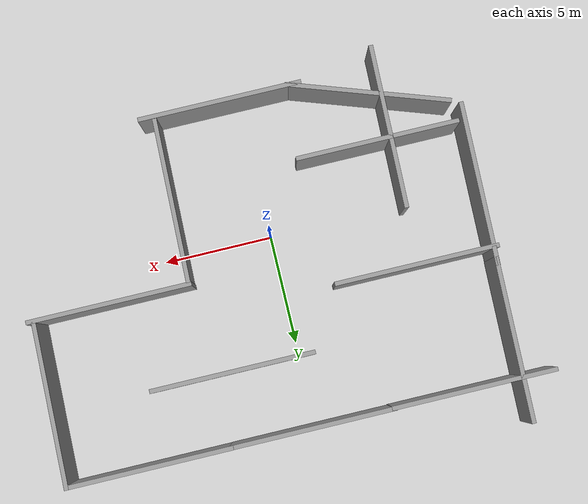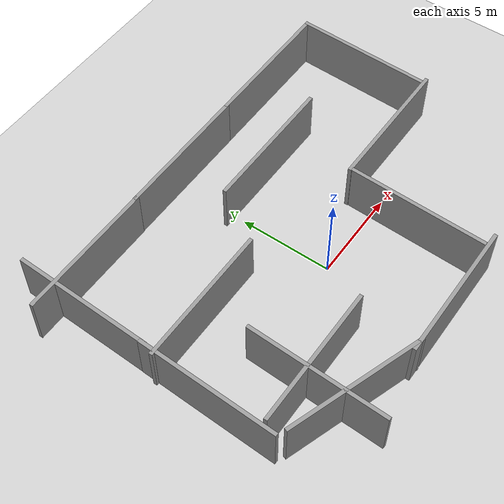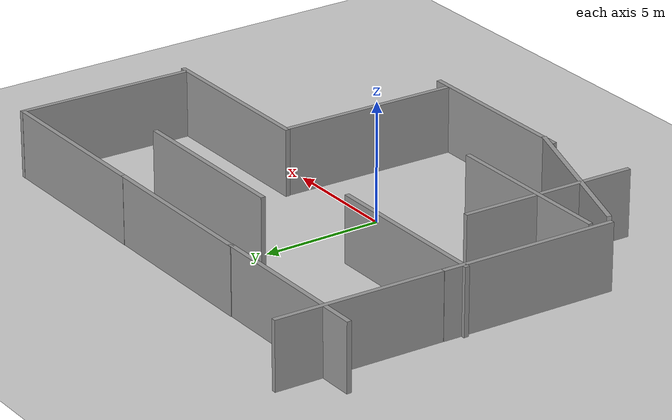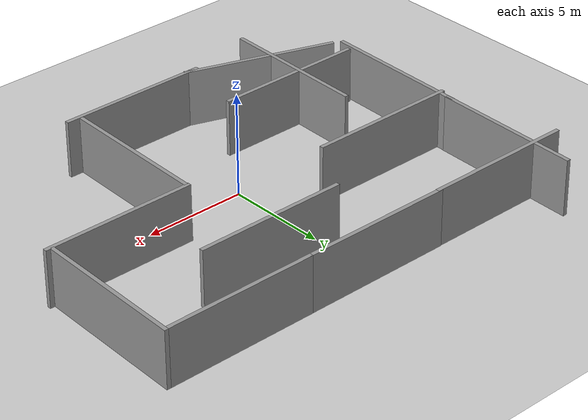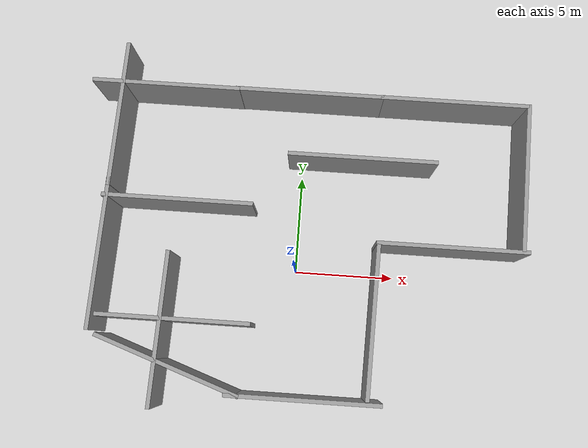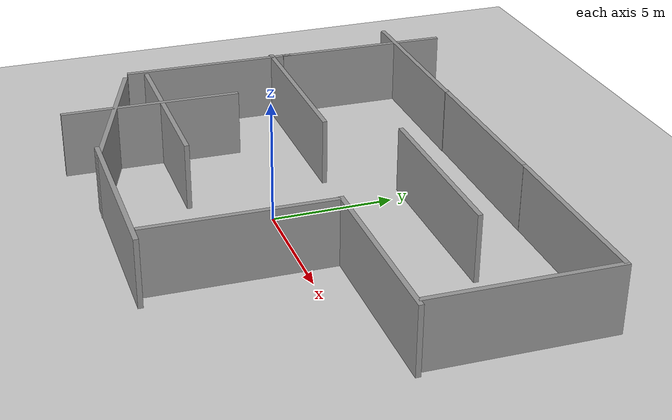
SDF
<sdf version="1.7">
 <world name="default">
  <light name="sun" type="directional">
   <pose>0 0 10 0 -0 0</pose>
   <diffuse>0.8 0.8 0.8 1</diffuse>
   <specular>0.2 0.2 0.2 1</specular>
   <attenuation>
    <range>1000</range>
    <constant>0.9</constant>
    <linear>0.01</linear>
    <quadratic>0.001</quadratic>
   </attenuation>
   <direction>-0.5 0.1 -0.9</direction>
   <spot><inner_angle>0</inner_angle><outer_angle>0</outer_angle><falloff>0</falloff></spot>
  </light>
  <model name="ground_plane">
   <static>1</static>
   <link name="link">
    <collision name="collision">
     <geometry><plane><normal>0 0 1</normal><size>100 100</size></plane></geometry>
     <surface>
      <contact><collide_bitmask>65535</collide_bitmask></contact>
      <friction><ode><mu>100</mu><mu2>50</mu2></ode></friction>
     </surface>
    </collision>
    <visual name="visual">
     <cast_shadows>0</cast_shadows>
     <geometry><plane><normal>0 0 1</normal><size>100 100</size></plane></geometry>
     <material>
      <script><uri>file://media/materials/scripts/gazebo.material</uri><name>Gazebo/Grey</name></script>
     </material>
    </visual>
   </link>
  </model>
  <gravity>0 0 -9.8</gravity>
  <magnetic_field>6e-06 2.3e-05 -4.2e-05</magnetic_field>
  <atmosphere type="adiabatic"/>
  <physics type="ode">
   <max_step_size>0.001</max_step_size>
   <real_time_factor>1</real_time_factor>
   <real_time_update_rate>1000</real_time_update_rate>
  </physics>
  <scene><ambient>0.4 0.4 0.4 1</ambient><background>0.7 0.7 0.7 1</background><shadows>1</shadows></scene>
  <spherical_coordinates>
   <surface_model>EARTH_WGS84</surface_model>
   <latitude_deg>0</latitude_deg>
   <longitude_deg>0</longitude_deg>
   <elevation>0</elevation>
   <heading_deg>0</heading_deg>
  </spherical_coordinates>
  <model name="grey_wall">
   <static>1</static>
   <link name="link">
    <pose>0 0 1.4 0 -0 0</pose>
    <collision name="collision"><geometry><box><size>7.5 0.2 2.8</size></box></geometry></collision>
    <visual name="visual">
     <cast_shadows>0</cast_shadows>
     <geometry><box><size>7.5 0.2 2.8</size></box></geometry>
     <material>
      <script>
       <uri>model://grey_wall/materials/scripts</uri>
       <uri>model://grey_wall/materials/textures</uri>
       <name>vrc/grey_wall</name>
      </script>
     </material>
    </visual>
   </link>
   <pose>3.02024 5.63237 0 0 -0 0</pose>
  </model>
  <model name="grey_wall_clone">
   <static>1</static>
   <link name="link">
    <pose>0 0 1.4 0 -0 0</pose>
    <collision name="collision"><geometry><box><size>7.5 0.2 2.8</size></box></geometry></collision>
    <visual name="visual">
     <cast_shadows>0</cast_shadows>
     <geometry><box><size>7.5 0.2 2.8</size></box></geometry>
     <material>
      <script>
       <uri>model://grey_wall/materials/scripts</uri>
       <uri>model://grey_wall/materials/textures</uri>
       <name>vrc/grey_wall</name>
      </script>
     </material>
    </visual>
   </link>
   <pose>7.64274 1.42867 0 0 -0 0</pose>
  </model>
  <model name="grey_wall_clone_0">
   <static>1</static>
   <link name="link">
    <pose>0 0 1.4 0 -0 0</pose>
    <collision name="collision"><geometry><box><size>7.5 0.2 2.8</size></box></geometry></collision>
    <visual name="visual">
     <cast_shadows>0</cast_shadows>
     <geometry><box><size>7.5 0.2 2.8</size></box></geometry>
     <material>
      <script>
       <uri>model://grey_wall/materials/scripts</uri>
       <uri>model://grey_wall/materials/textures</uri>
       <name>vrc/grey_wall</name>
      </script>
     </material>
    </visual>
   </link>
   <pose>-6.00056 2.93337 0 0 -0 0</pose>
  </model>
  <model name="grey_wall_clone_1">
   <static>1</static>
   <link name="link">
    <pose>0 0 1.4 0 -0 0</pose>
    <collision name="collision"><geometry><box><size>7.5 0.2 2.8</size></box></geometry></collision>
    <visual name="visual">
     <cast_shadows>0</cast_shadows>
     <geometry><box><size>7.5 0.2 2.8</size></box></geometry>
     <material>
      <script>
       <uri>model://grey_wall/materials/scripts</uri>
       <uri>model://grey_wall/materials/textures</uri>
       <name>vrc/grey_wall</name>
      </script>
     </material>
    </visual>
   </link>
   <pose>-5.63972 -2.8983 0 0 -0 0</pose>
  </model>
  <model name="grey_wall_clone_2">
   <static>1</static>
   <link name="link">
    <pose>0 0 1.4 0 -0 0</pose>
    <collision name="collision"><geometry><box><size>7.5 0.2 2.8</size></box></geometry></collision>
    <visual name="visual">
     <cast_shadows>0</cast_shadows>
     <geometry><box><size>7.5 0.2 2.8</size></box></geometry>
     <material>
      <script>
       <uri>model://grey_wall/materials/scripts</uri>
       <uri>model://grey_wall/materials/textures</uri>
       <name>vrc/grey_wall</name>
      </script>
     </material>
    </visual>
   </link>
   <pose>0.823925 -6.24686 0 0 -0 0</pose>
  </model>
  <model name="grey_wall_clone_3">
   <static>1</static>
   <link name="link">
    <pose>0 0 1.4 0 -0 0</pose>
    <collision name="collision"><geometry><box><size>7.5 0.2 2.8</size></box></geometry></collision>
    <visual name="visual">
     <cast_shadows>0</cast_shadows>
     <geometry><box><size>7.5 0.2 2.8</size></box></geometry>
     <material>
      <script>
       <uri>model://grey_wall/materials/scripts</uri>
       <uri>model://grey_wall/materials/textures</uri>
       <name>vrc/grey_wall</name>
      </script>
     </material>
    </visual>
   </link>
   <pose>-9.57212 0.063738 0 0 -0 1.54673</pose>
  </model>
  <model name="grey_wall_clone_3_clone">
   <static>1</static>
   <link name="link">
    <pose>0 0 1.4 0 -0 0</pose>
    <collision name="collision"><geometry><box><size>7.5 0.2 2.8</size></box></geometry></collision>
    <visual name="visual">
     <cast_shadows>0</cast_shadows>
     <geometry><box><size>7.5 0.2 2.8</size></box></geometry>
     <material>
      <script>
       <uri>model://grey_wall/materials/scripts</uri>
       <uri>model://grey_wall/materials/textures</uri>
       <name>vrc/grey_wall</name>
      </script>
     </material>
    </visual>
   </link>
   <pose>-6.25604 -3.37228 0 0 -0 1.54673</pose>
  </model>
  <model name="grey_wall_clone_3_clone_0">
   <static>1</static>
   <link name="link">
    <pose>0 0 1.4 0 -0 0</pose>
    <collision name="collision"><geometry><box><size>7.5 0.2 2.8</size></box></geometry></collision>
    <visual name="visual">
     <cast_shadows>0</cast_shadows>
     <geometry><box><size>7.5 0.2 2.8</size></box></geometry>
     <material>
      <script>
       <uri>model://grey_wall/materials/scripts</uri>
       <uri>model://grey_wall/materials/textures</uri>
       <name>vrc/grey_wall</name>
      </script>
     </material>
    </visual>
   </link>
   <pose>3.93228 -2.38579 0 0 -0 1.54673</pose>
  </model>
  <model name="grey_wall_clone_3_clone_1">
   <static>1</static>
   <link name="link">
    <pose>0 0 1.4 0 -0 0</pose>
    <collision name="collision"><geometry><box><size>7.5 0.2 2.8</size></box></geometry></collision>
    <visual name="visual">
     <cast_shadows>0</cast_shadows>
     <geometry><box><size>7.5 0.2 2.8</size></box></geometry>
     <material>
      <script>
       <uri>model://grey_wall/materials/scripts</uri>
       <uri>model://grey_wall/materials/textures</uri>
       <name>vrc/grey_wall</name>
      </script>
     </material>
    </visual>
   </link>
   <pose>11.1513 5.21665 0 0 -0 1.54673</pose>
  </model>
  <model name="grey_wall_clone_4">
   <static>1</static>
   <link name="link">
    <pose>0 0 1.4 0 -0 0</pose>
    <collision name="collision"><geometry><box><size>7.5 0.2 2.8</size></box></geometry></collision>
    <visual name="visual">
     <cast_shadows>0</cast_shadows>
     <geometry><box><size>7.5 0.2 2.8</size></box></geometry>
     <material>
      <script>
       <uri>model://grey_wall/materials/scripts</uri>
       <uri>model://grey_wall/materials/textures</uri>
       <name>vrc/grey_wall</name>
      </script>
     </material>
    </visual>
   </link>
   <pose>7.48942 8.86356 0 0 -0 0</pose>
  </model>
  <model name="grey_wall_clone_5">
   <static>1</static>
   <link name="link">
    <pose>0 0 1.4 0 -0 0</pose>
    <collision name="collision"><geometry><box><size>7.5 0.2 2.8</size></box></geometry></collision>
    <visual name="visual">
     <cast_shadows>0</cast_shadows>
     <geometry><box><size>7.5 0.2 2.8</size></box></geometry>
     <material>
      <script>
       <uri>model://grey_wall/materials/scripts</uri>
       <uri>model://grey_wall/materials/textures</uri>
       <name>vrc/grey_wall</name>
      </script>
     </material>
    </visual>
   </link>
   <pose>0.138578 8.85688 0 0 -0 0</pose>
  </model>
  <model name="grey_wall_clone_6">
   <static>1</static>
   <link name="link">
    <pose>0 0 1.4 0 -0 0</pose>
    <collision name="collision"><geometry><box><size>7.5 0.2 2.8</size></box></geometry></collision>
    <visual name="visual">
     <cast_shadows>0</cast_shadows>
     <geometry><box><size>7.5 0.2 2.8</size></box></geometry>
     <material>
      <script>
       <uri>model://grey_wall/materials/scripts</uri>
       <uri>model://grey_wall/materials/textures</uri>
       <name>vrc/grey_wall</name>
      </script>
     </material>
    </visual>
   </link>
   <pose>-7.15817 8.83511 0 0 -0 0</pose>
  </model>
  <model name="grey_wall_clone_3_clone_2">
   <static>1</static>
   <link name="link">
    <pose>0 0 1.4 0 -0 0</pose>
    <collision name="collision"><geometry><box><size>7.5 0.2 2.8</size></box></geometry></collision>
    <visual name="visual">
     <cast_shadows>0</cast_shadows>
     <geometry><box><size>7.5 0.2 2.8</size></box></geometry>
     <material>
      <script>
       <uri>model://grey_wall/materials/scripts</uri>
       <uri>model://grey_wall/materials/textures</uri>
       <name>vrc/grey_wall</name>
      </script>
     </material>
    </visual>
   </link>
   <pose>-9.38938 7.16111 0 0 -0 1.54673</pose>
  </model>
  <model name="grey_wall_clone_0_clone">
   <static>1</static>
   <link name="link">
    <pose>0 0 1.4 0 -0 0</pose>
    <collision name="collision"><geometry><box><size>7.5 0.2 2.8</size></box></geometry></collision>
    <visual name="visual">
     <cast_shadows>0</cast_shadows>
     <geometry><box><size>7.5 0.2 2.8</size></box></geometry>
     <material>
      <script>
       <uri>model://grey_wall/materials/scripts</uri>
       <uri>model://grey_wall/materials/textures</uri>
       <name>vrc/grey_wall</name>
      </script>
     </material>
    </visual>
   </link>
   <pose>-5.73168 -5.07052 0 0 0 -0.332544</pose>
  </model>
 </world>
</sdf>
